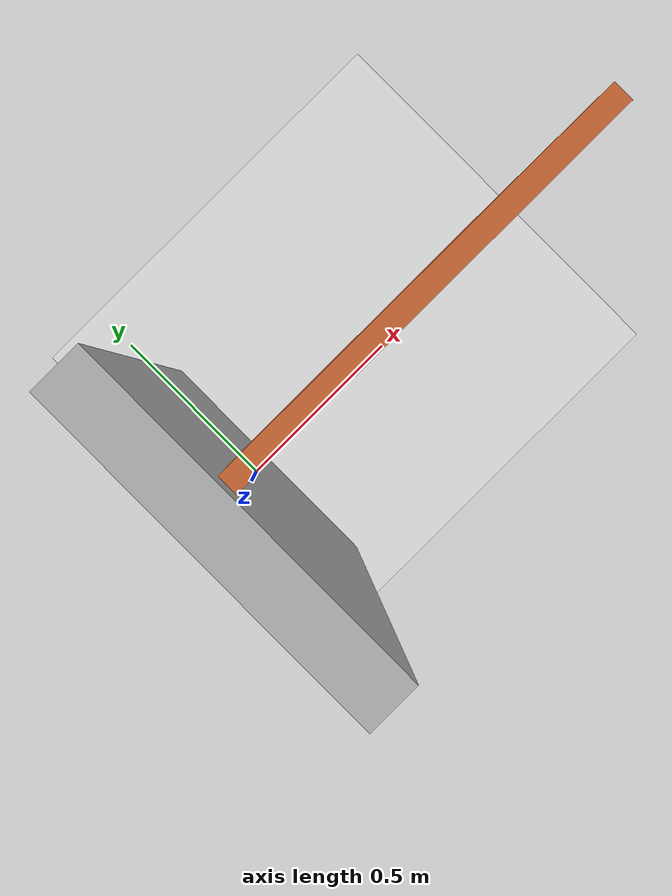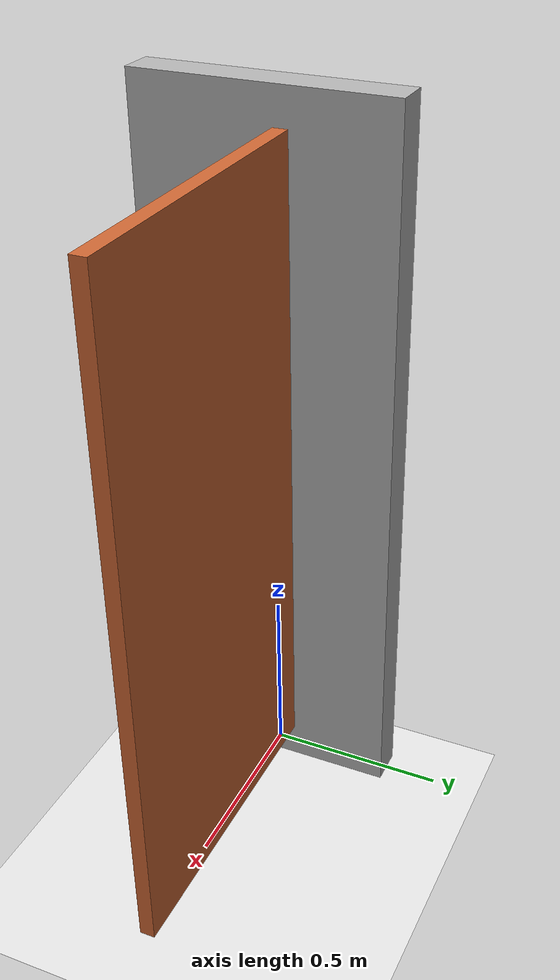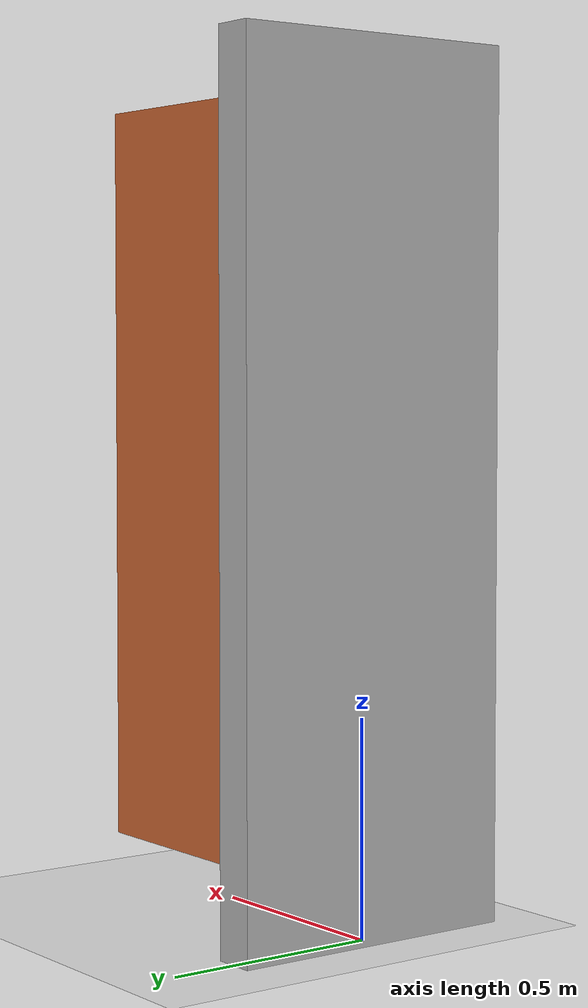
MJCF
<mujoco model="door_hinge">
  <compiler angle="degree" coordinate="local"/>
  <option gravity="0 0 -9.81"/>

  <asset>
    <texture type="skybox" builtin="gradient" rgb1="0.8 0.9 1.0" rgb2="0.1 0.2 0.3" width="256" height="256"/>
    <material name="mat_frame" rgba="0.7 0.7 0.7 1"/>
    <material name="mat_door" rgba="0.8 0.4 0.2 1"/>
  </asset>

  <worldbody>
    <light pos="0 0 3" dir="0 0 -1" diffuse="1 1 1"/>
    <geom name="floor" type="plane" size="5 5 0.1" rgba="0.9 0.9 0.9 1"/>

    <body name="frame" pos="0 0 0">
      <geom name="frame_geom" type="box" pos="0 0 1.0" size="0.05 0.35 1.0" density="400" material="mat_frame"/>

      <body name="door" pos="0 0 0">
        <joint name="hinge" type="hinge" pos="0 0.30 1.0" axis="0 0 1" limited="true" range="-60 60" damping="0.2"/>
        <geom name="door_geom" type="box" pos="0.45 0.05 1.0" size="0.45 0.02 0.9" density="300" material="mat_door"/>
      </body>
    </body>
  </worldbody>
</mujoco>
